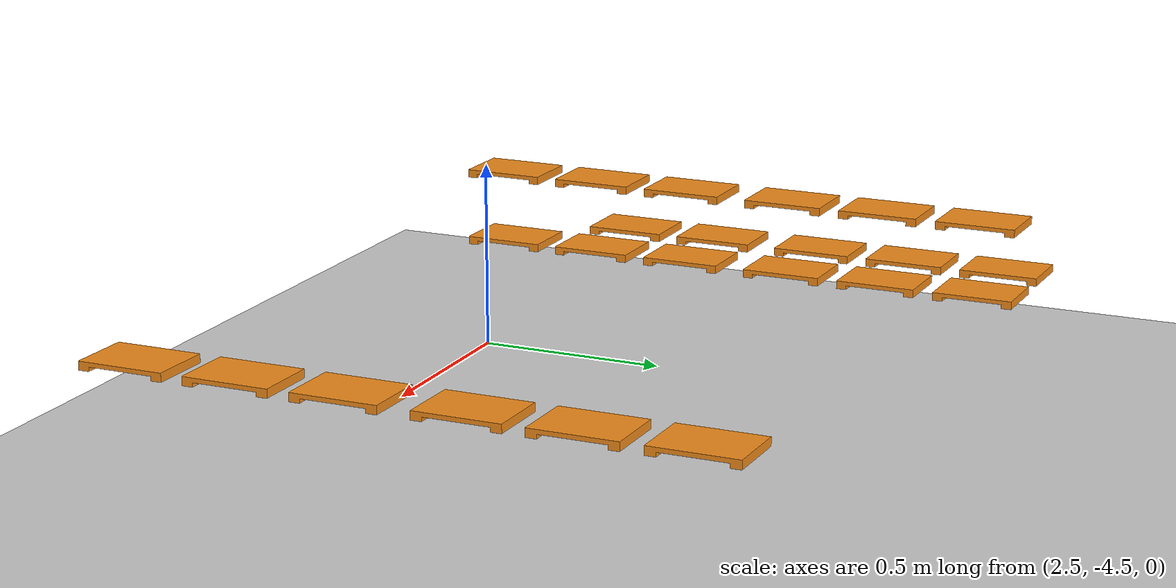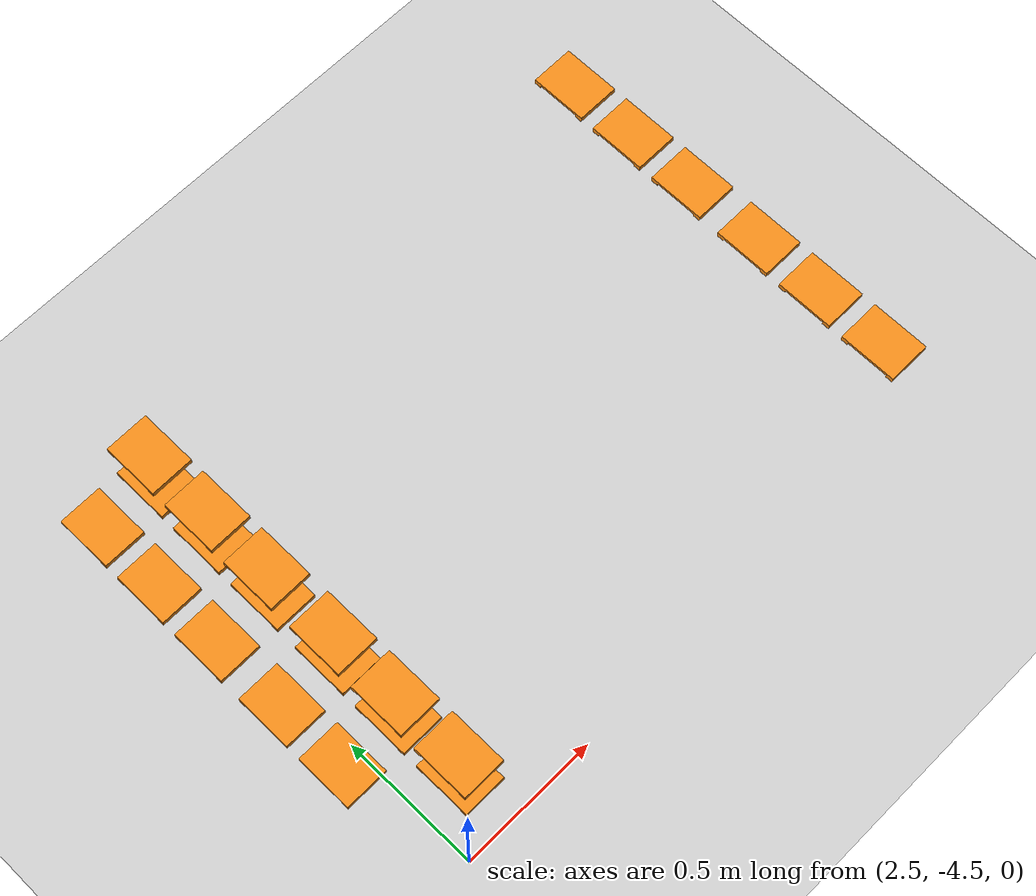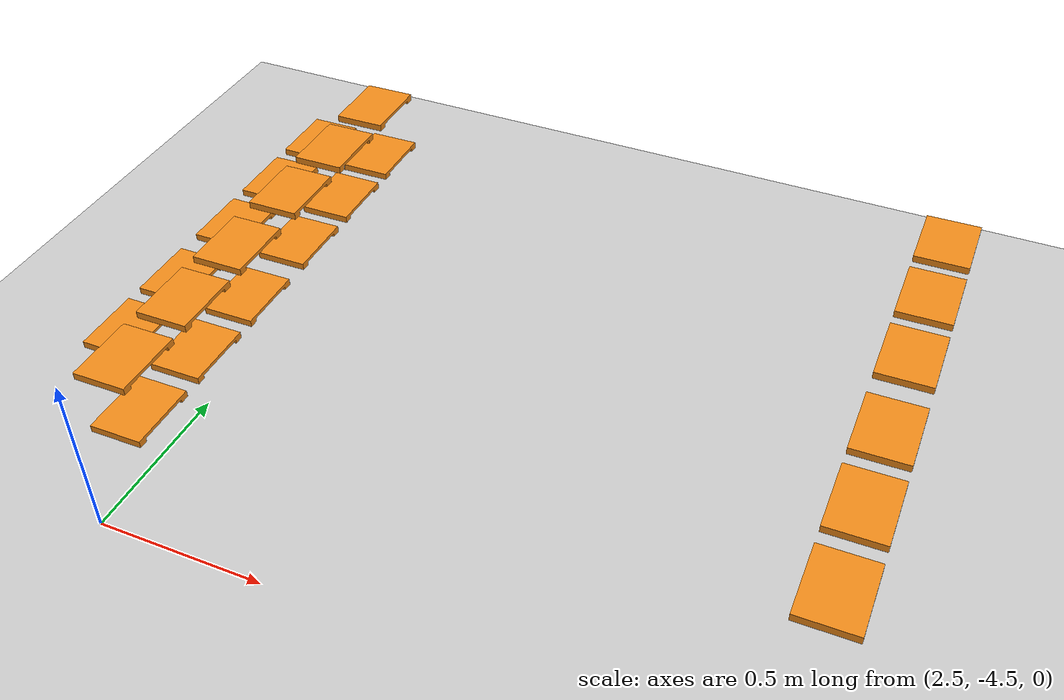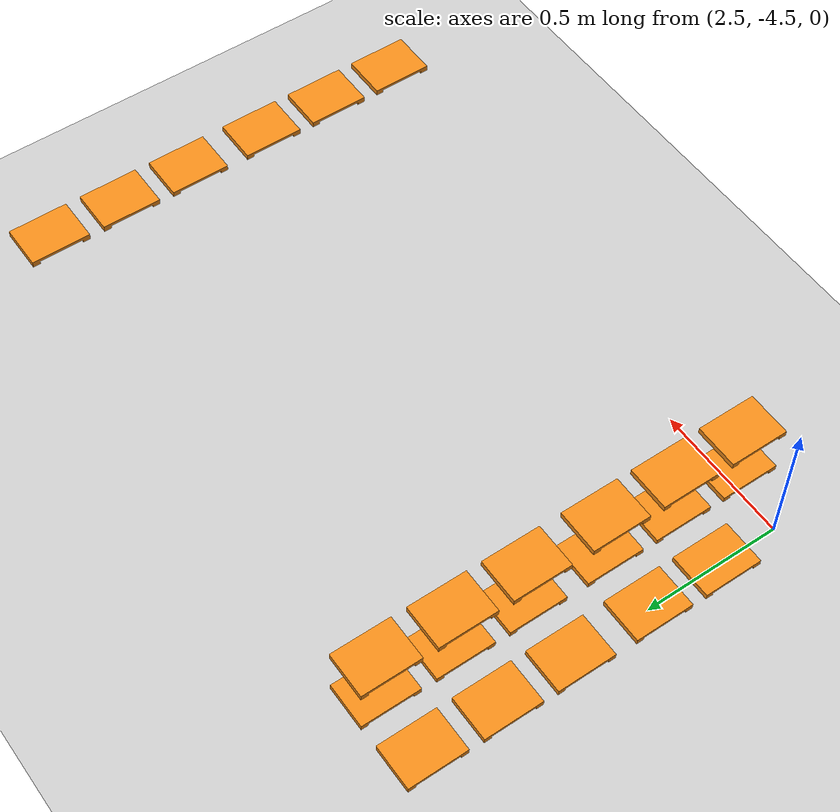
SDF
<sdf version="1.7">
 <world name="default">
  <model name="ground_plane">
   <static>1</static>
   <link name="link">
    <collision name="collision">
     <geometry><plane><normal>0 0 1</normal><size>100 100</size></plane></geometry>
     <surface>
      <contact><collide_bitmask>65535</collide_bitmask></contact>
      <friction><ode><mu>1</mu><mu2>1</mu2></ode></friction>
     </surface>
    </collision>
    <visual name="visual">
     <cast_shadows>0</cast_shadows>
     <geometry><plane><normal>0 0 1</normal><size>100 100</size></plane></geometry>
     <material>
      <script><uri>file://media/materials/scripts/gazebo.material</uri><name>Gazebo/Grey</name></script>
     </material>
    </visual>
   </link>
  </model>
  <model name="pallet_217">
   <pose>2.60532 -3.088 0.330918 4e-06 -0.014059 -4e-06</pose>
   <link name="link">
    <inertial>
     <pose>0 0 0 0 -0 1.571</pose>
     <inertia>
      <ixx>0.00220983</ixx>
      <ixy>0</ixy>
      <ixz>0</ixz>
      <iyy>0.00128087</iyy>
      <iyz>0</iyz>
      <izz>0.00244903</izz>
     </inertia>
     <mass>0.01</mass>
    </inertial>
    <visual name="visual1">
     <cast_shadows>0</cast_shadows>
     <geometry><mesh><uri>model://pallet/meshes/pallet.stl</uri></mesh></geometry>
     <material>
      <script><uri>file://media/materials/scripts/gazebo.material</uri><name>Gazebo/Orange</name></script>
      <shader type="pixel"><normal_map>__default__</normal_map></shader>
      <emissive>0 0 0 1</emissive>
     </material>
     <pose>0 0 -0 0 -0 1.571</pose>
    </visual>
    <collision name="collision_0">
     <pose>0 0 0 0 -0 1.571</pose>
     <geometry><mesh><uri>model://pallet/meshes/pallet.stl</uri></mesh></geometry>
     <surface>
      <friction>
       <ode><mu>1</mu><mu2>1</mu2><fdir1>0 0 0</fdir1><slip1>0</slip1><slip2>0</slip2></ode>
       <torsional>
        <coefficient>1</coefficient>
        <patch_radius>0</patch_radius>
        <surface_radius>0</surface_radius>
        <use_patch_radius>1</use_patch_radius>
        <ode><slip>0</slip></ode>
       </torsional>
      </friction>
      <bounce><restitution_coefficient>0</restitution_coefficient><threshold>1e+06</threshold></bounce>
      <contact>
       <collide_without_contact>0</collide_without_contact>
       <collide_without_contact_bitmask>1</collide_without_contact_bitmask>
       <collide_bitmask>1</collide_bitmask>
       <ode>
        <soft_cfm>0</soft_cfm>
        <soft_erp>0.2</soft_erp>
        <kp>1e+13</kp>
        <kd>1</kd>
        <max_vel>0.01</max_vel>
        <min_depth>0</min_depth>
       </ode>
       <bullet>
        <split_impulse>1</split_impulse>
        <split_impulse_penetration_threshold>-0.01</split_impulse_penetration_threshold>
        <soft_cfm>0</soft_cfm>
        <soft_erp>0.2</soft_erp>
        <kp>1e+13</kp>
        <kd>1</kd>
       </bullet>
      </contact>
     </surface>
    </collision>
   </link>
   <static>0</static>
  </model>
  <model name="pallet_218">
   <pose>2.60532 -3.338 0.330914 4.3e-05 -0.014052 4e-06</pose>
   <link name="link">
    <inertial>
     <pose>0 0 0 0 -0 1.571</pose>
     <inertia>
      <ixx>0.00220983</ixx>
      <ixy>0</ixy>
      <ixz>0</ixz>
      <iyy>0.00128087</iyy>
      <iyz>0</iyz>
      <izz>0.00244903</izz>
     </inertia>
     <mass>0.01</mass>
    </inertial>
    <visual name="visual1">
     <cast_shadows>0</cast_shadows>
     <geometry><mesh><uri>model://pallet/meshes/pallet.stl</uri></mesh></geometry>
     <material>
      <script><uri>file://media/materials/scripts/gazebo.material</uri><name>Gazebo/Orange</name></script>
      <shader type="pixel"><normal_map>__default__</normal_map></shader>
      <emissive>0 0 0 1</emissive>
     </material>
     <pose>0 0 -0 0 -0 1.571</pose>
    </visual>
    <collision name="collision_0">
     <pose>0 0 0 0 -0 1.571</pose>
     <geometry><mesh><uri>model://pallet/meshes/pallet.stl</uri></mesh></geometry>
     <surface>
      <friction>
       <ode><mu>1</mu><mu2>1</mu2><fdir1>0 0 0</fdir1><slip1>0</slip1><slip2>0</slip2></ode>
       <torsional>
        <coefficient>1</coefficient>
        <patch_radius>0</patch_radius>
        <surface_radius>0</surface_radius>
        <use_patch_radius>1</use_patch_radius>
        <ode><slip>0</slip></ode>
       </torsional>
      </friction>
      <bounce><restitution_coefficient>0</restitution_coefficient><threshold>1e+06</threshold></bounce>
      <contact>
       <collide_without_contact>0</collide_without_contact>
       <collide_without_contact_bitmask>1</collide_without_contact_bitmask>
       <collide_bitmask>1</collide_bitmask>
       <ode>
        <soft_cfm>0</soft_cfm>
        <soft_erp>0.2</soft_erp>
        <kp>1e+13</kp>
        <kd>1</kd>
        <max_vel>0.01</max_vel>
        <min_depth>0</min_depth>
       </ode>
       <bullet>
        <split_impulse>1</split_impulse>
        <split_impulse_penetration_threshold>-0.01</split_impulse_penetration_threshold>
        <soft_cfm>0</soft_cfm>
        <soft_erp>0.2</soft_erp>
        <kp>1e+13</kp>
        <kd>1</kd>
       </bullet>
      </contact>
     </surface>
    </collision>
   </link>
   <static>0</static>
  </model>
  <model name="pallet_219">
   <pose>2.60532 -3.588 0.330913 4.1e-05 -0.014051 1.1e-05</pose>
   <link name="link">
    <inertial>
     <pose>0 0 0 0 -0 1.571</pose>
     <inertia>
      <ixx>0.00220983</ixx>
      <ixy>0</ixy>
      <ixz>0</ixz>
      <iyy>0.00128087</iyy>
      <iyz>0</iyz>
      <izz>0.00244903</izz>
     </inertia>
     <mass>0.01</mass>
    </inertial>
    <visual name="visual1">
     <cast_shadows>0</cast_shadows>
     <geometry><mesh><uri>model://pallet/meshes/pallet.stl</uri></mesh></geometry>
     <material>
      <script><uri>file://media/materials/scripts/gazebo.material</uri><name>Gazebo/Orange</name></script>
      <shader type="pixel"><normal_map>__default__</normal_map></shader>
      <emissive>0 0 0 1</emissive>
     </material>
     <pose>0 0 -0 0 -0 1.571</pose>
    </visual>
    <collision name="collision_0">
     <pose>0 0 0 0 -0 1.571</pose>
     <geometry><mesh><uri>model://pallet/meshes/pallet.stl</uri></mesh></geometry>
     <surface>
      <friction>
       <ode><mu>1</mu><mu2>1</mu2><fdir1>0 0 0</fdir1><slip1>0</slip1><slip2>0</slip2></ode>
       <torsional>
        <coefficient>1</coefficient>
        <patch_radius>0</patch_radius>
        <surface_radius>0</surface_radius>
        <use_patch_radius>1</use_patch_radius>
        <ode><slip>0</slip></ode>
       </torsional>
      </friction>
      <bounce><restitution_coefficient>0</restitution_coefficient><threshold>1e+06</threshold></bounce>
      <contact>
       <collide_without_contact>0</collide_without_contact>
       <collide_without_contact_bitmask>1</collide_without_contact_bitmask>
       <collide_bitmask>1</collide_bitmask>
       <ode>
        <soft_cfm>0</soft_cfm>
        <soft_erp>0.2</soft_erp>
        <kp>1e+13</kp>
        <kd>1</kd>
        <max_vel>0.01</max_vel>
        <min_depth>0</min_depth>
       </ode>
       <bullet>
        <split_impulse>1</split_impulse>
        <split_impulse_penetration_threshold>-0.01</split_impulse_penetration_threshold>
        <soft_cfm>0</soft_cfm>
        <soft_erp>0.2</soft_erp>
        <kp>1e+13</kp>
        <kd>1</kd>
       </bullet>
      </contact>
     </surface>
    </collision>
   </link>
   <static>0</static>
  </model>
  <model name="pallet_220">
   <pose>2.60532 -3.8625 0.330915 5e-06 -0.014057 6e-06</pose>
   <link name="link">
    <inertial>
     <pose>0 0 0 0 -0 1.571</pose>
     <inertia>
      <ixx>0.00220983</ixx>
      <ixy>0</ixy>
      <ixz>0</ixz>
      <iyy>0.00128087</iyy>
      <iyz>0</iyz>
      <izz>0.00244903</izz>
     </inertia>
     <mass>0.01</mass>
    </inertial>
    <visual name="visual1">
     <cast_shadows>0</cast_shadows>
     <geometry><mesh><uri>model://pallet/meshes/pallet.stl</uri></mesh></geometry>
     <material>
      <script><uri>file://media/materials/scripts/gazebo.material</uri><name>Gazebo/Orange</name></script>
      <shader type="pixel"><normal_map>__default__</normal_map></shader>
      <emissive>0 0 0 1</emissive>
     </material>
     <pose>0 0 -0 0 -0 1.571</pose>
    </visual>
    <collision name="collision_0">
     <pose>0 0 0 0 -0 1.571</pose>
     <geometry><mesh><uri>model://pallet/meshes/pallet.stl</uri></mesh></geometry>
     <surface>
      <friction>
       <ode><mu>1</mu><mu2>1</mu2><fdir1>0 0 0</fdir1><slip1>0</slip1><slip2>0</slip2></ode>
       <torsional>
        <coefficient>1</coefficient>
        <patch_radius>0</patch_radius>
        <surface_radius>0</surface_radius>
        <use_patch_radius>1</use_patch_radius>
        <ode><slip>0</slip></ode>
       </torsional>
      </friction>
      <bounce><restitution_coefficient>0</restitution_coefficient><threshold>1e+06</threshold></bounce>
      <contact>
       <collide_without_contact>0</collide_without_contact>
       <collide_without_contact_bitmask>1</collide_without_contact_bitmask>
       <collide_bitmask>1</collide_bitmask>
       <ode>
        <soft_cfm>0</soft_cfm>
        <soft_erp>0.2</soft_erp>
        <kp>1e+13</kp>
        <kd>1</kd>
        <max_vel>0.01</max_vel>
        <min_depth>0</min_depth>
       </ode>
       <bullet>
        <split_impulse>1</split_impulse>
        <split_impulse_penetration_threshold>-0.01</split_impulse_penetration_threshold>
        <soft_cfm>0</soft_cfm>
        <soft_erp>0.2</soft_erp>
        <kp>1e+13</kp>
        <kd>1</kd>
       </bullet>
      </contact>
     </surface>
    </collision>
   </link>
   <static>0</static>
  </model>
  <model name="pallet_221">
   <pose>2.60533 -4.1125 0.330913 2.2e-05 -0.014055 8e-06</pose>
   <link name="link">
    <inertial>
     <pose>0 0 0 0 -0 1.571</pose>
     <inertia>
      <ixx>0.00220983</ixx>
      <ixy>0</ixy>
      <ixz>0</ixz>
      <iyy>0.00128087</iyy>
      <iyz>0</iyz>
      <izz>0.00244903</izz>
     </inertia>
     <mass>0.01</mass>
    </inertial>
    <visual name="visual1">
     <cast_shadows>0</cast_shadows>
     <geometry><mesh><uri>model://pallet/meshes/pallet.stl</uri></mesh></geometry>
     <material>
      <script><uri>file://media/materials/scripts/gazebo.material</uri><name>Gazebo/Orange</name></script>
      <shader type="pixel"><normal_map>__default__</normal_map></shader>
      <emissive>0 0 0 1</emissive>
     </material>
     <pose>0 0 -0 0 -0 1.571</pose>
    </visual>
    <collision name="collision_0">
     <pose>0 0 0 0 -0 1.571</pose>
     <geometry><mesh><uri>model://pallet/meshes/pallet.stl</uri></mesh></geometry>
     <surface>
      <friction>
       <ode><mu>1</mu><mu2>1</mu2><fdir1>0 0 0</fdir1><slip1>0</slip1><slip2>0</slip2></ode>
       <torsional>
        <coefficient>1</coefficient>
        <patch_radius>0</patch_radius>
        <surface_radius>0</surface_radius>
        <use_patch_radius>1</use_patch_radius>
        <ode><slip>0</slip></ode>
       </torsional>
      </friction>
      <bounce><restitution_coefficient>0</restitution_coefficient><threshold>1e+06</threshold></bounce>
      <contact>
       <collide_without_contact>0</collide_without_contact>
       <collide_without_contact_bitmask>1</collide_without_contact_bitmask>
       <collide_bitmask>1</collide_bitmask>
       <ode>
        <soft_cfm>0</soft_cfm>
        <soft_erp>0.2</soft_erp>
        <kp>1e+13</kp>
        <kd>1</kd>
        <max_vel>0.01</max_vel>
        <min_depth>0</min_depth>
       </ode>
       <bullet>
        <split_impulse>1</split_impulse>
        <split_impulse_penetration_threshold>-0.01</split_impulse_penetration_threshold>
        <soft_cfm>0</soft_cfm>
        <soft_erp>0.2</soft_erp>
        <kp>1e+13</kp>
        <kd>1</kd>
       </bullet>
      </contact>
     </surface>
    </collision>
   </link>
   <static>0</static>
  </model>
  <model name="pallet_222">
   <pose>2.60533 -4.3625 0.330911 2e-05 -0.014052 8e-06</pose>
   <link name="link">
    <inertial>
     <pose>0 0 0 0 -0 1.571</pose>
     <inertia>
      <ixx>0.00220983</ixx>
      <ixy>0</ixy>
      <ixz>0</ixz>
      <iyy>0.00128087</iyy>
      <iyz>0</iyz>
      <izz>0.00244903</izz>
     </inertia>
     <mass>0.01</mass>
    </inertial>
    <visual name="visual1">
     <cast_shadows>0</cast_shadows>
     <geometry><mesh><uri>model://pallet/meshes/pallet.stl</uri></mesh></geometry>
     <material>
      <script><uri>file://media/materials/scripts/gazebo.material</uri><name>Gazebo/Orange</name></script>
      <shader type="pixel"><normal_map>__default__</normal_map></shader>
      <emissive>0 0 0 1</emissive>
     </material>
     <pose>0 0 -0 0 -0 1.571</pose>
    </visual>
    <collision name="collision_0">
     <pose>0 0 0 0 -0 1.571</pose>
     <geometry><mesh><uri>model://pallet/meshes/pallet.stl</uri></mesh></geometry>
     <surface>
      <friction>
       <ode><mu>1</mu><mu2>1</mu2><fdir1>0 0 0</fdir1><slip1>0</slip1><slip2>0</slip2></ode>
       <torsional>
        <coefficient>1</coefficient>
        <patch_radius>0</patch_radius>
        <surface_radius>0</surface_radius>
        <use_patch_radius>1</use_patch_radius>
        <ode><slip>0</slip></ode>
       </torsional>
      </friction>
      <bounce><restitution_coefficient>0</restitution_coefficient><threshold>1e+06</threshold></bounce>
      <contact>
       <collide_without_contact>0</collide_without_contact>
       <collide_without_contact_bitmask>1</collide_without_contact_bitmask>
       <collide_bitmask>1</collide_bitmask>
       <ode>
        <soft_cfm>0</soft_cfm>
        <soft_erp>0.2</soft_erp>
        <kp>1e+13</kp>
        <kd>1</kd>
        <max_vel>0.01</max_vel>
        <min_depth>0</min_depth>
       </ode>
       <bullet>
        <split_impulse>1</split_impulse>
        <split_impulse_penetration_threshold>-0.01</split_impulse_penetration_threshold>
        <soft_cfm>0</soft_cfm>
        <soft_erp>0.2</soft_erp>
        <kp>1e+13</kp>
        <kd>1</kd>
       </bullet>
      </contact>
     </surface>
    </collision>
   </link>
   <static>0</static>
  </model>
  <model name="pallet_229">
   <pose>2.38564 -3.088 0.330994 1e-06 -0.013096 -3e-06</pose>
   <link name="link">
    <inertial>
     <pose>0 0 0 0 -0 1.571</pose>
     <inertia>
      <ixx>0.00220983</ixx>
      <ixy>0</ixy>
      <ixz>0</ixz>
      <iyy>0.00128087</iyy>
      <iyz>0</iyz>
      <izz>0.00244903</izz>
     </inertia>
     <mass>0.01</mass>
    </inertial>
    <visual name="visual1">
     <cast_shadows>0</cast_shadows>
     <geometry><mesh><uri>model://pallet/meshes/pallet.stl</uri></mesh></geometry>
     <material>
      <script><uri>file://media/materials/scripts/gazebo.material</uri><name>Gazebo/Orange</name></script>
      <shader type="pixel"><normal_map>__default__</normal_map></shader>
      <emissive>0 0 0 1</emissive>
     </material>
     <pose>0 0 -0 0 -0 1.571</pose>
    </visual>
    <collision name="collision_0">
     <pose>0 0 0 0 -0 1.571</pose>
     <geometry><mesh><uri>model://pallet/meshes/pallet.stl</uri></mesh></geometry>
     <surface>
      <friction>
       <ode><mu>1</mu><mu2>1</mu2><fdir1>0 0 0</fdir1><slip1>0</slip1><slip2>0</slip2></ode>
       <torsional>
        <coefficient>1</coefficient>
        <patch_radius>0</patch_radius>
        <surface_radius>0</surface_radius>
        <use_patch_radius>1</use_patch_radius>
        <ode><slip>0</slip></ode>
       </torsional>
      </friction>
      <bounce><restitution_coefficient>0</restitution_coefficient><threshold>1e+06</threshold></bounce>
      <contact>
       <collide_without_contact>0</collide_without_contact>
       <collide_without_contact_bitmask>1</collide_without_contact_bitmask>
       <collide_bitmask>1</collide_bitmask>
       <ode>
        <soft_cfm>0</soft_cfm>
        <soft_erp>0.2</soft_erp>
        <kp>1e+13</kp>
        <kd>1</kd>
        <max_vel>0.01</max_vel>
        <min_depth>0</min_depth>
       </ode>
       <bullet>
        <split_impulse>1</split_impulse>
        <split_impulse_penetration_threshold>-0.01</split_impulse_penetration_threshold>
        <soft_cfm>0</soft_cfm>
        <soft_erp>0.2</soft_erp>
        <kp>1e+13</kp>
        <kd>1</kd>
       </bullet>
      </contact>
     </surface>
    </collision>
   </link>
   <static>0</static>
  </model>
  <model name="pallet_230">
   <pose>2.38564 -3.338 0.33099 4.1e-05 -0.013088 6e-06</pose>
   <link name="link">
    <inertial>
     <pose>0 0 0 0 -0 1.571</pose>
     <inertia>
      <ixx>0.00220983</ixx>
      <ixy>0</ixy>
      <ixz>0</ixz>
      <iyy>0.00128087</iyy>
      <iyz>0</iyz>
      <izz>0.00244903</izz>
     </inertia>
     <mass>0.01</mass>
    </inertial>
    <visual name="visual1">
     <cast_shadows>0</cast_shadows>
     <geometry><mesh><uri>model://pallet/meshes/pallet.stl</uri></mesh></geometry>
     <material>
      <script><uri>file://media/materials/scripts/gazebo.material</uri><name>Gazebo/Orange</name></script>
      <shader type="pixel"><normal_map>__default__</normal_map></shader>
      <emissive>0 0 0 1</emissive>
     </material>
     <pose>0 0 -0 0 -0 1.571</pose>
    </visual>
    <collision name="collision_0">
     <pose>0 0 0 0 -0 1.571</pose>
     <geometry><mesh><uri>model://pallet/meshes/pallet.stl</uri></mesh></geometry>
     <surface>
      <friction>
       <ode><mu>1</mu><mu2>1</mu2><fdir1>0 0 0</fdir1><slip1>0</slip1><slip2>0</slip2></ode>
       <torsional>
        <coefficient>1</coefficient>
        <patch_radius>0</patch_radius>
        <surface_radius>0</surface_radius>
        <use_patch_radius>1</use_patch_radius>
        <ode><slip>0</slip></ode>
       </torsional>
      </friction>
      <bounce><restitution_coefficient>0</restitution_coefficient><threshold>1e+06</threshold></bounce>
      <contact>
       <collide_without_contact>0</collide_without_contact>
       <collide_without_contact_bitmask>1</collide_without_contact_bitmask>
       <collide_bitmask>1</collide_bitmask>
       <ode>
        <soft_cfm>0</soft_cfm>
        <soft_erp>0.2</soft_erp>
        <kp>1e+13</kp>
        <kd>1</kd>
        <max_vel>0.01</max_vel>
        <min_depth>0</min_depth>
       </ode>
       <bullet>
        <split_impulse>1</split_impulse>
        <split_impulse_penetration_threshold>-0.01</split_impulse_penetration_threshold>
        <soft_cfm>0</soft_cfm>
        <soft_erp>0.2</soft_erp>
        <kp>1e+13</kp>
        <kd>1</kd>
       </bullet>
      </contact>
     </surface>
    </collision>
   </link>
   <static>0</static>
  </model>
  <model name="pallet_231">
   <pose>2.38564 -3.588 0.33099 3.8e-05 -0.013087 1.3e-05</pose>
   <link name="link">
    <inertial>
     <pose>0 0 0 0 -0 1.571</pose>
     <inertia>
      <ixx>0.00220983</ixx>
      <ixy>0</ixy>
      <ixz>0</ixz>
      <iyy>0.00128087</iyy>
      <iyz>0</iyz>
      <izz>0.00244903</izz>
     </inertia>
     <mass>0.01</mass>
    </inertial>
    <visual name="visual1">
     <cast_shadows>0</cast_shadows>
     <geometry><mesh><uri>model://pallet/meshes/pallet.stl</uri></mesh></geometry>
     <material>
      <script><uri>file://media/materials/scripts/gazebo.material</uri><name>Gazebo/Orange</name></script>
      <shader type="pixel"><normal_map>__default__</normal_map></shader>
      <emissive>0 0 0 1</emissive>
     </material>
     <pose>0 0 -0 0 -0 1.571</pose>
    </visual>
    <collision name="collision_0">
     <pose>0 0 0 0 -0 1.571</pose>
     <geometry><mesh><uri>model://pallet/meshes/pallet.stl</uri></mesh></geometry>
     <surface>
      <friction>
       <ode><mu>1</mu><mu2>1</mu2><fdir1>0 0 0</fdir1><slip1>0</slip1><slip2>0</slip2></ode>
       <torsional>
        <coefficient>1</coefficient>
        <patch_radius>0</patch_radius>
        <surface_radius>0</surface_radius>
        <use_patch_radius>1</use_patch_radius>
        <ode><slip>0</slip></ode>
       </torsional>
      </friction>
      <bounce><restitution_coefficient>0</restitution_coefficient><threshold>1e+06</threshold></bounce>
      <contact>
       <collide_without_contact>0</collide_without_contact>
       <collide_without_contact_bitmask>1</collide_without_contact_bitmask>
       <collide_bitmask>1</collide_bitmask>
       <ode>
        <soft_cfm>0</soft_cfm>
        <soft_erp>0.2</soft_erp>
        <kp>1e+13</kp>
        <kd>1</kd>
        <max_vel>0.01</max_vel>
        <min_depth>0</min_depth>
       </ode>
       <bullet>
        <split_impulse>1</split_impulse>
        <split_impulse_penetration_threshold>-0.01</split_impulse_penetration_threshold>
        <soft_cfm>0</soft_cfm>
        <soft_erp>0.2</soft_erp>
        <kp>1e+13</kp>
        <kd>1</kd>
       </bullet>
      </contact>
     </surface>
    </collision>
   </link>
   <static>0</static>
  </model>
  <model name="pallet_232">
   <pose>2.38564 -3.8625 0.330991 1.3e-05 -0.01309 8e-06</pose>
   <link name="link">
    <inertial>
     <pose>0 0 0 0 -0 1.571</pose>
     <inertia>
      <ixx>0.00220983</ixx>
      <ixy>0</ixy>
      <ixz>0</ixz>
      <iyy>0.00128087</iyy>
      <iyz>0</iyz>
      <izz>0.00244903</izz>
     </inertia>
     <mass>0.01</mass>
    </inertial>
    <visual name="visual1">
     <cast_shadows>0</cast_shadows>
     <geometry><mesh><uri>model://pallet/meshes/pallet.stl</uri></mesh></geometry>
     <material>
      <script><uri>file://media/materials/scripts/gazebo.material</uri><name>Gazebo/Orange</name></script>
      <shader type="pixel"><normal_map>__default__</normal_map></shader>
      <emissive>0 0 0 1</emissive>
     </material>
     <pose>0 0 -0 0 -0 1.571</pose>
    </visual>
    <collision name="collision_0">
     <pose>0 0 0 0 -0 1.571</pose>
     <geometry><mesh><uri>model://pallet/meshes/pallet.stl</uri></mesh></geometry>
     <surface>
      <friction>
       <ode><mu>1</mu><mu2>1</mu2><fdir1>0 0 0</fdir1><slip1>0</slip1><slip2>0</slip2></ode>
       <torsional>
        <coefficient>1</coefficient>
        <patch_radius>0</patch_radius>
        <surface_radius>0</surface_radius>
        <use_patch_radius>1</use_patch_radius>
        <ode><slip>0</slip></ode>
       </torsional>
      </friction>
      <bounce><restitution_coefficient>0</restitution_coefficient><threshold>1e+06</threshold></bounce>
      <contact>
       <collide_without_contact>0</collide_without_contact>
       <collide_without_contact_bitmask>1</collide_without_contact_bitmask>
       <collide_bitmask>1</collide_bitmask>
       <ode>
        <soft_cfm>0</soft_cfm>
        <soft_erp>0.2</soft_erp>
        <kp>1e+13</kp>
        <kd>1</kd>
        <max_vel>0.01</max_vel>
        <min_depth>0</min_depth>
       </ode>
       <bullet>
        <split_impulse>1</split_impulse>
        <split_impulse_penetration_threshold>-0.01</split_impulse_penetration_threshold>
        <soft_cfm>0</soft_cfm>
        <soft_erp>0.2</soft_erp>
        <kp>1e+13</kp>
        <kd>1</kd>
       </bullet>
      </contact>
     </surface>
    </collision>
   </link>
   <static>0</static>
  </model>
  <model name="pallet_233">
   <pose>2.38565 -4.1125 0.330989 2.6e-05 -0.013088 9e-06</pose>
   <link name="link">
    <inertial>
     <pose>0 0 0 0 -0 1.571</pose>
     <inertia>
      <ixx>0.00220983</ixx>
      <ixy>0</ixy>
      <ixz>0</ixz>
      <iyy>0.00128087</iyy>
      <iyz>0</iyz>
      <izz>0.00244903</izz>
     </inertia>
     <mass>0.01</mass>
    </inertial>
    <visual name="visual1">
     <cast_shadows>0</cast_shadows>
     <geometry><mesh><uri>model://pallet/meshes/pallet.stl</uri></mesh></geometry>
     <material>
      <script><uri>file://media/materials/scripts/gazebo.material</uri><name>Gazebo/Orange</name></script>
      <shader type="pixel"><normal_map>__default__</normal_map></shader>
      <emissive>0 0 0 1</emissive>
     </material>
     <pose>0 0 -0 0 -0 1.571</pose>
    </visual>
    <collision name="collision_0">
     <pose>0 0 0 0 -0 1.571</pose>
     <geometry><mesh><uri>model://pallet/meshes/pallet.stl</uri></mesh></geometry>
     <surface>
      <friction>
       <ode><mu>1</mu><mu2>1</mu2><fdir1>0 0 0</fdir1><slip1>0</slip1><slip2>0</slip2></ode>
       <torsional>
        <coefficient>1</coefficient>
        <patch_radius>0</patch_radius>
        <surface_radius>0</surface_radius>
        <use_patch_radius>1</use_patch_radius>
        <ode><slip>0</slip></ode>
       </torsional>
      </friction>
      <bounce><restitution_coefficient>0</restitution_coefficient><threshold>1e+06</threshold></bounce>
      <contact>
       <collide_without_contact>0</collide_without_contact>
       <collide_without_contact_bitmask>1</collide_without_contact_bitmask>
       <collide_bitmask>1</collide_bitmask>
       <ode>
        <soft_cfm>0</soft_cfm>
        <soft_erp>0.2</soft_erp>
        <kp>1e+13</kp>
        <kd>1</kd>
        <max_vel>0.01</max_vel>
        <min_depth>0</min_depth>
       </ode>
       <bullet>
        <split_impulse>1</split_impulse>
        <split_impulse_penetration_threshold>-0.01</split_impulse_penetration_threshold>
        <soft_cfm>0</soft_cfm>
        <soft_erp>0.2</soft_erp>
        <kp>1e+13</kp>
        <kd>1</kd>
       </bullet>
      </contact>
     </surface>
    </collision>
   </link>
   <static>0</static>
  </model>
  <model name="pallet_253">
   <pose>2.60279 -3.088 0.5109 3e-06 -0.014058 -2e-06</pose>
   <link name="link">
    <inertial>
     <pose>0 0 0 0 -0 1.571</pose>
     <inertia>
      <ixx>0.00220983</ixx>
      <ixy>0</ixy>
      <ixz>0</ixz>
      <iyy>0.00128087</iyy>
      <iyz>0</iyz>
      <izz>0.00244903</izz>
     </inertia>
     <mass>0.01</mass>
    </inertial>
    <visual name="visual1">
     <cast_shadows>0</cast_shadows>
     <geometry><mesh><uri>model://pallet/meshes/pallet.stl</uri></mesh></geometry>
     <material>
      <script><uri>file://media/materials/scripts/gazebo.material</uri><name>Gazebo/Orange</name></script>
      <shader type="pixel"><normal_map>__default__</normal_map></shader>
      <emissive>0 0 0 1</emissive>
     </material>
     <pose>0 0 -0 0 -0 1.571</pose>
    </visual>
    <collision name="collision_0">
     <pose>0 0 0 0 -0 1.571</pose>
     <geometry><mesh><uri>model://pallet/meshes/pallet.stl</uri></mesh></geometry>
     <surface>
      <friction>
       <ode><mu>1</mu><mu2>1</mu2><fdir1>0 0 0</fdir1><slip1>0</slip1><slip2>0</slip2></ode>
       <torsional>
        <coefficient>1</coefficient>
        <patch_radius>0</patch_radius>
        <surface_radius>0</surface_radius>
        <use_patch_radius>1</use_patch_radius>
        <ode><slip>0</slip></ode>
       </torsional>
      </friction>
      <bounce><restitution_coefficient>0</restitution_coefficient><threshold>1e+06</threshold></bounce>
      <contact>
       <collide_without_contact>0</collide_without_contact>
       <collide_without_contact_bitmask>1</collide_without_contact_bitmask>
       <collide_bitmask>1</collide_bitmask>
       <ode>
        <soft_cfm>0</soft_cfm>
        <soft_erp>0.2</soft_erp>
        <kp>1e+13</kp>
        <kd>1</kd>
        <max_vel>0.01</max_vel>
        <min_depth>0</min_depth>
       </ode>
       <bullet>
        <split_impulse>1</split_impulse>
        <split_impulse_penetration_threshold>-0.01</split_impulse_penetration_threshold>
        <soft_cfm>0</soft_cfm>
        <soft_erp>0.2</soft_erp>
        <kp>1e+13</kp>
        <kd>1</kd>
       </bullet>
      </contact>
     </surface>
    </collision>
   </link>
   <static>0</static>
  </model>
  <model name="pallet_254">
   <pose>2.60279 -3.338 0.510896 4.2e-05 -0.014051 5e-06</pose>
   <link name="link">
    <inertial>
     <pose>0 0 0 0 -0 1.571</pose>
     <inertia>
      <ixx>0.00220983</ixx>
      <ixy>0</ixy>
      <ixz>0</ixz>
      <iyy>0.00128087</iyy>
      <iyz>0</iyz>
      <izz>0.00244903</izz>
     </inertia>
     <mass>0.01</mass>
    </inertial>
    <visual name="visual1">
     <cast_shadows>0</cast_shadows>
     <geometry><mesh><uri>model://pallet/meshes/pallet.stl</uri></mesh></geometry>
     <material>
      <script><uri>file://media/materials/scripts/gazebo.material</uri><name>Gazebo/Orange</name></script>
      <shader type="pixel"><normal_map>__default__</normal_map></shader>
      <emissive>0 0 0 1</emissive>
     </material>
     <pose>0 0 -0 0 -0 1.571</pose>
    </visual>
    <collision name="collision_0">
     <pose>0 0 0 0 -0 1.571</pose>
     <geometry><mesh><uri>model://pallet/meshes/pallet.stl</uri></mesh></geometry>
     <surface>
      <friction>
       <ode><mu>1</mu><mu2>1</mu2><fdir1>0 0 0</fdir1><slip1>0</slip1><slip2>0</slip2></ode>
       <torsional>
        <coefficient>1</coefficient>
        <patch_radius>0</patch_radius>
        <surface_radius>0</surface_radius>
        <use_patch_radius>1</use_patch_radius>
        <ode><slip>0</slip></ode>
       </torsional>
      </friction>
      <bounce><restitution_coefficient>0</restitution_coefficient><threshold>1e+06</threshold></bounce>
      <contact>
       <collide_without_contact>0</collide_without_contact>
       <collide_without_contact_bitmask>1</collide_without_contact_bitmask>
       <collide_bitmask>1</collide_bitmask>
       <ode>
        <soft_cfm>0</soft_cfm>
        <soft_erp>0.2</soft_erp>
        <kp>1e+13</kp>
        <kd>1</kd>
        <max_vel>0.01</max_vel>
        <min_depth>0</min_depth>
       </ode>
       <bullet>
        <split_impulse>1</split_impulse>
        <split_impulse_penetration_threshold>-0.01</split_impulse_penetration_threshold>
        <soft_cfm>0</soft_cfm>
        <soft_erp>0.2</soft_erp>
        <kp>1e+13</kp>
        <kd>1</kd>
       </bullet>
      </contact>
     </surface>
    </collision>
   </link>
   <static>0</static>
  </model>
  <model name="pallet_255">
   <pose>2.60279 -3.588 0.510895 3.5e-05 -0.01405 8e-06</pose>
   <link name="link">
    <inertial>
     <pose>0 0 0 0 -0 1.571</pose>
     <inertia>
      <ixx>0.00220983</ixx>
      <ixy>0</ixy>
      <ixz>0</ixz>
      <iyy>0.00128087</iyy>
      <iyz>0</iyz>
      <izz>0.00244903</izz>
     </inertia>
     <mass>0.01</mass>
    </inertial>
    <visual name="visual1">
     <cast_shadows>0</cast_shadows>
     <geometry><mesh><uri>model://pallet/meshes/pallet.stl</uri></mesh></geometry>
     <material>
      <script><uri>file://media/materials/scripts/gazebo.material</uri><name>Gazebo/Orange</name></script>
      <shader type="pixel"><normal_map>__default__</normal_map></shader>
      <emissive>0 0 0 1</emissive>
     </material>
     <pose>0 0 -0 0 -0 1.571</pose>
    </visual>
    <collision name="collision_0">
     <pose>0 0 0 0 -0 1.571</pose>
     <geometry><mesh><uri>model://pallet/meshes/pallet.stl</uri></mesh></geometry>
     <surface>
      <friction>
       <ode><mu>1</mu><mu2>1</mu2><fdir1>0 0 0</fdir1><slip1>0</slip1><slip2>0</slip2></ode>
       <torsional>
        <coefficient>1</coefficient>
        <patch_radius>0</patch_radius>
        <surface_radius>0</surface_radius>
        <use_patch_radius>1</use_patch_radius>
        <ode><slip>0</slip></ode>
       </torsional>
      </friction>
      <bounce><restitution_coefficient>0</restitution_coefficient><threshold>1e+06</threshold></bounce>
      <contact>
       <collide_without_contact>0</collide_without_contact>
       <collide_without_contact_bitmask>1</collide_without_contact_bitmask>
       <collide_bitmask>1</collide_bitmask>
       <ode>
        <soft_cfm>0</soft_cfm>
        <soft_erp>0.2</soft_erp>
        <kp>1e+13</kp>
        <kd>1</kd>
        <max_vel>0.01</max_vel>
        <min_depth>0</min_depth>
       </ode>
       <bullet>
        <split_impulse>1</split_impulse>
        <split_impulse_penetration_threshold>-0.01</split_impulse_penetration_threshold>
        <soft_cfm>0</soft_cfm>
        <soft_erp>0.2</soft_erp>
        <kp>1e+13</kp>
        <kd>1</kd>
       </bullet>
      </contact>
     </surface>
    </collision>
   </link>
   <static>0</static>
  </model>
  <model name="pallet_256">
   <pose>2.60279 -3.8625 0.510898 4e-06 -0.014057 6e-06</pose>
   <link name="link">
    <inertial>
     <pose>0 0 0 0 -0 1.571</pose>
     <inertia>
      <ixx>0.00220983</ixx>
      <ixy>0</ixy>
      <ixz>0</ixz>
      <iyy>0.00128087</iyy>
      <iyz>0</iyz>
      <izz>0.00244903</izz>
     </inertia>
     <mass>0.01</mass>
    </inertial>
    <visual name="visual1">
     <cast_shadows>0</cast_shadows>
     <geometry><mesh><uri>model://pallet/meshes/pallet.stl</uri></mesh></geometry>
     <material>
      <script><uri>file://media/materials/scripts/gazebo.material</uri><name>Gazebo/Orange</name></script>
      <shader type="pixel"><normal_map>__default__</normal_map></shader>
      <emissive>0 0 0 1</emissive>
     </material>
     <pose>0 0 -0 0 -0 1.571</pose>
    </visual>
    <collision name="collision_0">
     <pose>0 0 0 0 -0 1.571</pose>
     <geometry><mesh><uri>model://pallet/meshes/pallet.stl</uri></mesh></geometry>
     <surface>
      <friction>
       <ode><mu>1</mu><mu2>1</mu2><fdir1>0 0 0</fdir1><slip1>0</slip1><slip2>0</slip2></ode>
       <torsional>
        <coefficient>1</coefficient>
        <patch_radius>0</patch_radius>
        <surface_radius>0</surface_radius>
        <use_patch_radius>1</use_patch_radius>
        <ode><slip>0</slip></ode>
       </torsional>
      </friction>
      <bounce><restitution_coefficient>0</restitution_coefficient><threshold>1e+06</threshold></bounce>
      <contact>
       <collide_without_contact>0</collide_without_contact>
       <collide_without_contact_bitmask>1</collide_without_contact_bitmask>
       <collide_bitmask>1</collide_bitmask>
       <ode>
        <soft_cfm>0</soft_cfm>
        <soft_erp>0.2</soft_erp>
        <kp>1e+13</kp>
        <kd>1</kd>
        <max_vel>0.01</max_vel>
        <min_depth>0</min_depth>
       </ode>
       <bullet>
        <split_impulse>1</split_impulse>
        <split_impulse_penetration_threshold>-0.01</split_impulse_penetration_threshold>
        <soft_cfm>0</soft_cfm>
        <soft_erp>0.2</soft_erp>
        <kp>1e+13</kp>
        <kd>1</kd>
       </bullet>
      </contact>
     </surface>
    </collision>
   </link>
   <static>0</static>
  </model>
  <model name="pallet_257">
   <pose>2.60279 -4.1125 0.510894 3e-05 -0.014052 2e-06</pose>
   <link name="link">
    <inertial>
     <pose>0 0 0 0 -0 1.571</pose>
     <inertia>
      <ixx>0.00220983</ixx>
      <ixy>0</ixy>
      <ixz>0</ixz>
      <iyy>0.00128087</iyy>
      <iyz>0</iyz>
      <izz>0.00244903</izz>
     </inertia>
     <mass>0.01</mass>
    </inertial>
    <visual name="visual1">
     <cast_shadows>0</cast_shadows>
     <geometry><mesh><uri>model://pallet/meshes/pallet.stl</uri></mesh></geometry>
     <material>
      <script><uri>file://media/materials/scripts/gazebo.material</uri><name>Gazebo/Orange</name></script>
      <shader type="pixel"><normal_map>__default__</normal_map></shader>
      <emissive>0 0 0 1</emissive>
     </material>
     <pose>0 0 -0 0 -0 1.571</pose>
    </visual>
    <collision name="collision_0">
     <pose>0 0 0 0 -0 1.571</pose>
     <geometry><mesh><uri>model://pallet/meshes/pallet.stl</uri></mesh></geometry>
     <surface>
      <friction>
       <ode><mu>1</mu><mu2>1</mu2><fdir1>0 0 0</fdir1><slip1>0</slip1><slip2>0</slip2></ode>
       <torsional>
        <coefficient>1</coefficient>
        <patch_radius>0</patch_radius>
        <surface_radius>0</surface_radius>
        <use_patch_radius>1</use_patch_radius>
        <ode><slip>0</slip></ode>
       </torsional>
      </friction>
      <bounce><restitution_coefficient>0</restitution_coefficient><threshold>1e+06</threshold></bounce>
      <contact>
       <collide_without_contact>0</collide_without_contact>
       <collide_without_contact_bitmask>1</collide_without_contact_bitmask>
       <collide_bitmask>1</collide_bitmask>
       <ode>
        <soft_cfm>0</soft_cfm>
        <soft_erp>0.2</soft_erp>
        <kp>1e+13</kp>
        <kd>1</kd>
        <max_vel>0.01</max_vel>
        <min_depth>0</min_depth>
       </ode>
       <bullet>
        <split_impulse>1</split_impulse>
        <split_impulse_penetration_threshold>-0.01</split_impulse_penetration_threshold>
        <soft_cfm>0</soft_cfm>
        <soft_erp>0.2</soft_erp>
        <kp>1e+13</kp>
        <kd>1</kd>
       </bullet>
      </contact>
     </surface>
    </collision>
   </link>
   <static>0</static>
  </model>
  <model name="pallet_258">
   <pose>2.6028 -4.3625 0.510893 3.4e-05 -0.014052 6e-06</pose>
   <link name="link">
    <inertial>
     <pose>0 0 0 0 -0 1.571</pose>
     <inertia>
      <ixx>0.00220983</ixx>
      <ixy>0</ixy>
      <ixz>0</ixz>
      <iyy>0.00128087</iyy>
      <iyz>0</iyz>
      <izz>0.00244903</izz>
     </inertia>
     <mass>0.01</mass>
    </inertial>
    <visual name="visual1">
     <cast_shadows>0</cast_shadows>
     <geometry><mesh><uri>model://pallet/meshes/pallet.stl</uri></mesh></geometry>
     <material>
      <script><uri>file://media/materials/scripts/gazebo.material</uri><name>Gazebo/Orange</name></script>
      <shader type="pixel"><normal_map>__default__</normal_map></shader>
      <emissive>0 0 0 1</emissive>
     </material>
     <pose>0 0 -0 0 -0 1.571</pose>
    </visual>
    <collision name="collision_0">
     <pose>0 0 0 0 -0 1.571</pose>
     <geometry><mesh><uri>model://pallet/meshes/pallet.stl</uri></mesh></geometry>
     <surface>
      <friction>
       <ode><mu>1</mu><mu2>1</mu2><fdir1>0 0 0</fdir1><slip1>0</slip1><slip2>0</slip2></ode>
       <torsional>
        <coefficient>1</coefficient>
        <patch_radius>0</patch_radius>
        <surface_radius>0</surface_radius>
        <use_patch_radius>1</use_patch_radius>
        <ode><slip>0</slip></ode>
       </torsional>
      </friction>
      <bounce><restitution_coefficient>0</restitution_coefficient><threshold>1e+06</threshold></bounce>
      <contact>
       <collide_without_contact>0</collide_without_contact>
       <collide_without_contact_bitmask>1</collide_without_contact_bitmask>
       <collide_bitmask>1</collide_bitmask>
       <ode>
        <soft_cfm>0</soft_cfm>
        <soft_erp>0.2</soft_erp>
        <kp>1e+13</kp>
        <kd>1</kd>
        <max_vel>0.01</max_vel>
        <min_depth>0</min_depth>
       </ode>
       <bullet>
        <split_impulse>1</split_impulse>
        <split_impulse_penetration_threshold>-0.01</split_impulse_penetration_threshold>
        <soft_cfm>0</soft_cfm>
        <soft_erp>0.2</soft_erp>
        <kp>1e+13</kp>
        <kd>1</kd>
       </bullet>
      </contact>
     </surface>
    </collision>
   </link>
   <static>0</static>
  </model>
  <model name="pallet_277">
   <pose>4.38315 -3.088 0.510957 2e-06 -0.013353 -6e-06</pose>
   <link name="link">
    <inertial>
     <pose>0 0 0 0 -0 1.571</pose>
     <inertia>
      <ixx>0.00220983</ixx>
      <ixy>0</ixy>
      <ixz>0</ixz>
      <iyy>0.00128087</iyy>
      <iyz>0</iyz>
      <izz>0.00244903</izz>
     </inertia>
     <mass>0.01</mass>
    </inertial>
    <visual name="visual1">
     <cast_shadows>0</cast_shadows>
     <geometry><mesh><uri>model://pallet/meshes/pallet.stl</uri></mesh></geometry>
     <material>
      <script><uri>file://media/materials/scripts/gazebo.material</uri><name>Gazebo/Orange</name></script>
      <shader type="pixel"><normal_map>__default__</normal_map></shader>
      <emissive>0 0 0 1</emissive>
     </material>
     <pose>0 0 -0 0 -0 1.571</pose>
    </visual>
    <collision name="collision_0">
     <pose>0 0 0 0 -0 1.571</pose>
     <geometry><mesh><uri>model://pallet/meshes/pallet.stl</uri></mesh></geometry>
     <surface>
      <friction>
       <ode><mu>1</mu><mu2>1</mu2><fdir1>0 0 0</fdir1><slip1>0</slip1><slip2>0</slip2></ode>
       <torsional>
        <coefficient>1</coefficient>
        <patch_radius>0</patch_radius>
        <surface_radius>0</surface_radius>
        <use_patch_radius>1</use_patch_radius>
        <ode><slip>0</slip></ode>
       </torsional>
      </friction>
      <bounce><restitution_coefficient>0</restitution_coefficient><threshold>1e+06</threshold></bounce>
      <contact>
       <collide_without_contact>0</collide_without_contact>
       <collide_without_contact_bitmask>1</collide_without_contact_bitmask>
       <collide_bitmask>1</collide_bitmask>
       <ode>
        <soft_cfm>0</soft_cfm>
        <soft_erp>0.2</soft_erp>
        <kp>1e+13</kp>
        <kd>1</kd>
        <max_vel>0.01</max_vel>
        <min_depth>0</min_depth>
       </ode>
       <bullet>
        <split_impulse>1</split_impulse>
        <split_impulse_penetration_threshold>-0.01</split_impulse_penetration_threshold>
        <soft_cfm>0</soft_cfm>
        <soft_erp>0.2</soft_erp>
        <kp>1e+13</kp>
        <kd>1</kd>
       </bullet>
      </contact>
     </surface>
    </collision>
   </link>
   <static>0</static>
  </model>
  <model name="pallet_278">
   <pose>4.38315 -3.338 0.510953 4.2e-05 -0.013347 3e-06</pose>
   <link name="link">
    <inertial>
     <pose>0 0 0 0 -0 1.571</pose>
     <inertia>
      <ixx>0.00220983</ixx>
      <ixy>0</ixy>
      <ixz>0</ixz>
      <iyy>0.00128087</iyy>
      <iyz>0</iyz>
      <izz>0.00244903</izz>
     </inertia>
     <mass>0.01</mass>
    </inertial>
    <visual name="visual1">
     <cast_shadows>0</cast_shadows>
     <geometry><mesh><uri>model://pallet/meshes/pallet.stl</uri></mesh></geometry>
     <material>
      <script><uri>file://media/materials/scripts/gazebo.material</uri><name>Gazebo/Orange</name></script>
      <shader type="pixel"><normal_map>__default__</normal_map></shader>
      <emissive>0 0 0 1</emissive>
     </material>
     <pose>0 0 -0 0 -0 1.571</pose>
    </visual>
    <collision name="collision_0">
     <pose>0 0 0 0 -0 1.571</pose>
     <geometry><mesh><uri>model://pallet/meshes/pallet.stl</uri></mesh></geometry>
     <surface>
      <friction>
       <ode><mu>1</mu><mu2>1</mu2><fdir1>0 0 0</fdir1><slip1>0</slip1><slip2>0</slip2></ode>
       <torsional>
        <coefficient>1</coefficient>
        <patch_radius>0</patch_radius>
        <surface_radius>0</surface_radius>
        <use_patch_radius>1</use_patch_radius>
        <ode><slip>0</slip></ode>
       </torsional>
      </friction>
      <bounce><restitution_coefficient>0</restitution_coefficient><threshold>1e+06</threshold></bounce>
      <contact>
       <collide_without_contact>0</collide_without_contact>
       <collide_without_contact_bitmask>1</collide_without_contact_bitmask>
       <collide_bitmask>1</collide_bitmask>
       <ode>
        <soft_cfm>0</soft_cfm>
        <soft_erp>0.2</soft_erp>
        <kp>1e+13</kp>
        <kd>1</kd>
        <max_vel>0.01</max_vel>
        <min_depth>0</min_depth>
       </ode>
       <bullet>
        <split_impulse>1</split_impulse>
        <split_impulse_penetration_threshold>-0.01</split_impulse_penetration_threshold>
        <soft_cfm>0</soft_cfm>
        <soft_erp>0.2</soft_erp>
        <kp>1e+13</kp>
        <kd>1</kd>
       </bullet>
      </contact>
     </surface>
    </collision>
   </link>
   <static>0</static>
  </model>
  <model name="pallet_279">
   <pose>4.38315 -3.588 0.510952 3.7e-05 -0.013347 8e-06</pose>
   <link name="link">
    <inertial>
     <pose>0 0 0 0 -0 1.571</pose>
     <inertia>
      <ixx>0.00220983</ixx>
      <ixy>0</ixy>
      <ixz>0</ixz>
      <iyy>0.00128087</iyy>
      <iyz>0</iyz>
      <izz>0.00244903</izz>
     </inertia>
     <mass>0.01</mass>
    </inertial>
    <visual name="visual1">
     <cast_shadows>0</cast_shadows>
     <geometry><mesh><uri>model://pallet/meshes/pallet.stl</uri></mesh></geometry>
     <material>
      <script><uri>file://media/materials/scripts/gazebo.material</uri><name>Gazebo/Orange</name></script>
      <shader type="pixel"><normal_map>__default__</normal_map></shader>
      <emissive>0 0 0 1</emissive>
     </material>
     <pose>0 0 -0 0 -0 1.571</pose>
    </visual>
    <collision name="collision_0">
     <pose>0 0 0 0 -0 1.571</pose>
     <geometry><mesh><uri>model://pallet/meshes/pallet.stl</uri></mesh></geometry>
     <surface>
      <friction>
       <ode><mu>1</mu><mu2>1</mu2><fdir1>0 0 0</fdir1><slip1>0</slip1><slip2>0</slip2></ode>
       <torsional>
        <coefficient>1</coefficient>
        <patch_radius>0</patch_radius>
        <surface_radius>0</surface_radius>
        <use_patch_radius>1</use_patch_radius>
        <ode><slip>0</slip></ode>
       </torsional>
      </friction>
      <bounce><restitution_coefficient>0</restitution_coefficient><threshold>1e+06</threshold></bounce>
      <contact>
       <collide_without_contact>0</collide_without_contact>
       <collide_without_contact_bitmask>1</collide_without_contact_bitmask>
       <collide_bitmask>1</collide_bitmask>
       <ode>
        <soft_cfm>0</soft_cfm>
        <soft_erp>0.2</soft_erp>
        <kp>1e+13</kp>
        <kd>1</kd>
        <max_vel>0.01</max_vel>
        <min_depth>0</min_depth>
       </ode>
       <bullet>
        <split_impulse>1</split_impulse>
        <split_impulse_penetration_threshold>-0.01</split_impulse_penetration_threshold>
        <soft_cfm>0</soft_cfm>
        <soft_erp>0.2</soft_erp>
        <kp>1e+13</kp>
        <kd>1</kd>
       </bullet>
      </contact>
     </surface>
    </collision>
   </link>
   <static>0</static>
  </model>
  <model name="pallet_280">
   <pose>4.38315 -3.8625 0.510955 6e-06 -0.013354 0</pose>
   <link name="link">
    <inertial>
     <pose>0 0 0 0 -0 1.571</pose>
     <inertia>
      <ixx>0.00220983</ixx>
      <ixy>0</ixy>
      <ixz>0</ixz>
      <iyy>0.00128087</iyy>
      <iyz>0</iyz>
      <izz>0.00244903</izz>
     </inertia>
     <mass>0.01</mass>
    </inertial>
    <visual name="visual1">
     <cast_shadows>0</cast_shadows>
     <geometry><mesh><uri>model://pallet/meshes/pallet.stl</uri></mesh></geometry>
     <material>
      <script><uri>file://media/materials/scripts/gazebo.material</uri><name>Gazebo/Orange</name></script>
      <shader type="pixel"><normal_map>__default__</normal_map></shader>
      <emissive>0 0 0 1</emissive>
     </material>
     <pose>0 0 -0 0 -0 1.571</pose>
    </visual>
    <collision name="collision_0">
     <pose>0 0 0 0 -0 1.571</pose>
     <geometry><mesh><uri>model://pallet/meshes/pallet.stl</uri></mesh></geometry>
     <surface>
      <friction>
       <ode><mu>1</mu><mu2>1</mu2><fdir1>0 0 0</fdir1><slip1>0</slip1><slip2>0</slip2></ode>
       <torsional>
        <coefficient>1</coefficient>
        <patch_radius>0</patch_radius>
        <surface_radius>0</surface_radius>
        <use_patch_radius>1</use_patch_radius>
        <ode><slip>0</slip></ode>
       </torsional>
      </friction>
      <bounce><restitution_coefficient>0</restitution_coefficient><threshold>1e+06</threshold></bounce>
      <contact>
       <collide_without_contact>0</collide_without_contact>
       <collide_without_contact_bitmask>1</collide_without_contact_bitmask>
       <collide_bitmask>1</collide_bitmask>
       <ode>
        <soft_cfm>0</soft_cfm>
        <soft_erp>0.2</soft_erp>
        <kp>1e+13</kp>
        <kd>1</kd>
        <max_vel>0.01</max_vel>
        <min_depth>0</min_depth>
       </ode>
       <bullet>
        <split_impulse>1</split_impulse>
        <split_impulse_penetration_threshold>-0.01</split_impulse_penetration_threshold>
        <soft_cfm>0</soft_cfm>
        <soft_erp>0.2</soft_erp>
        <kp>1e+13</kp>
        <kd>1</kd>
       </bullet>
      </contact>
     </surface>
    </collision>
   </link>
   <static>0</static>
  </model>
  <model name="pallet_281">
   <pose>4.38316 -4.1125 0.510952 2.6e-05 -0.013348 -1e-06</pose>
   <link name="link">
    <inertial>
     <pose>0 0 0 0 -0 1.571</pose>
     <inertia>
      <ixx>0.00220983</ixx>
      <ixy>0</ixy>
      <ixz>0</ixz>
      <iyy>0.00128087</iyy>
      <iyz>0</iyz>
      <izz>0.00244903</izz>
     </inertia>
     <mass>0.01</mass>
    </inertial>
    <visual name="visual1">
     <cast_shadows>0</cast_shadows>
     <geometry><mesh><uri>model://pallet/meshes/pallet.stl</uri></mesh></geometry>
     <material>
      <script><uri>file://media/materials/scripts/gazebo.material</uri><name>Gazebo/Orange</name></script>
      <shader type="pixel"><normal_map>__default__</normal_map></shader>
      <emissive>0 0 0 1</emissive>
     </material>
     <pose>0 0 -0 0 -0 1.571</pose>
    </visual>
    <collision name="collision_0">
     <pose>0 0 0 0 -0 1.571</pose>
     <geometry><mesh><uri>model://pallet/meshes/pallet.stl</uri></mesh></geometry>
     <surface>
      <friction>
       <ode><mu>1</mu><mu2>1</mu2><fdir1>0 0 0</fdir1><slip1>0</slip1><slip2>0</slip2></ode>
       <torsional>
        <coefficient>1</coefficient>
        <patch_radius>0</patch_radius>
        <surface_radius>0</surface_radius>
        <use_patch_radius>1</use_patch_radius>
        <ode><slip>0</slip></ode>
       </torsional>
      </friction>
      <bounce><restitution_coefficient>0</restitution_coefficient><threshold>1e+06</threshold></bounce>
      <contact>
       <collide_without_contact>0</collide_without_contact>
       <collide_without_contact_bitmask>1</collide_without_contact_bitmask>
       <collide_bitmask>1</collide_bitmask>
       <ode>
        <soft_cfm>0</soft_cfm>
        <soft_erp>0.2</soft_erp>
        <kp>1e+13</kp>
        <kd>1</kd>
        <max_vel>0.01</max_vel>
        <min_depth>0</min_depth>
       </ode>
       <bullet>
        <split_impulse>1</split_impulse>
        <split_impulse_penetration_threshold>-0.01</split_impulse_penetration_threshold>
        <soft_cfm>0</soft_cfm>
        <soft_erp>0.2</soft_erp>
        <kp>1e+13</kp>
        <kd>1</kd>
       </bullet>
      </contact>
     </surface>
    </collision>
   </link>
   <static>0</static>
  </model>
  <model name="pallet_282">
   <pose>4.38316 -4.3625 0.510951 2.3e-05 -0.013348 1.3e-05</pose>
   <link name="link">
    <inertial>
     <pose>0 0 0 0 -0 1.571</pose>
     <inertia>
      <ixx>0.00220983</ixx>
      <ixy>0</ixy>
      <ixz>0</ixz>
      <iyy>0.00128087</iyy>
      <iyz>0</iyz>
      <izz>0.00244903</izz>
     </inertia>
     <mass>0.01</mass>
    </inertial>
    <visual name="visual1">
     <cast_shadows>0</cast_shadows>
     <geometry><mesh><uri>model://pallet/meshes/pallet.stl</uri></mesh></geometry>
     <material>
      <script><uri>file://media/materials/scripts/gazebo.material</uri><name>Gazebo/Orange</name></script>
      <shader type="pixel"><normal_map>__default__</normal_map></shader>
      <emissive>0 0 0 1</emissive>
     </material>
     <pose>0 0 -0 0 -0 1.571</pose>
    </visual>
    <collision name="collision_0">
     <pose>0 0 0 0 -0 1.571</pose>
     <geometry><mesh><uri>model://pallet/meshes/pallet.stl</uri></mesh></geometry>
     <surface>
      <friction>
       <ode><mu>1</mu><mu2>1</mu2><fdir1>0 0 0</fdir1><slip1>0</slip1><slip2>0</slip2></ode>
       <torsional>
        <coefficient>1</coefficient>
        <patch_radius>0</patch_radius>
        <surface_radius>0</surface_radius>
        <use_patch_radius>1</use_patch_radius>
        <ode><slip>0</slip></ode>
       </torsional>
      </friction>
      <bounce><restitution_coefficient>0</restitution_coefficient><threshold>1e+06</threshold></bounce>
      <contact>
       <collide_without_contact>0</collide_without_contact>
       <collide_without_contact_bitmask>1</collide_without_contact_bitmask>
       <collide_bitmask>1</collide_bitmask>
       <ode>
        <soft_cfm>0</soft_cfm>
        <soft_erp>0.2</soft_erp>
        <kp>1e+13</kp>
        <kd>1</kd>
        <max_vel>0.01</max_vel>
        <min_depth>0</min_depth>
       </ode>
       <bullet>
        <split_impulse>1</split_impulse>
        <split_impulse_penetration_threshold>-0.01</split_impulse_penetration_threshold>
        <soft_cfm>0</soft_cfm>
        <soft_erp>0.2</soft_erp>
        <kp>1e+13</kp>
        <kd>1</kd>
       </bullet>
      </contact>
     </surface>
    </collision>
   </link>
   <static>0</static>
  </model>
 </world>
</sdf>
